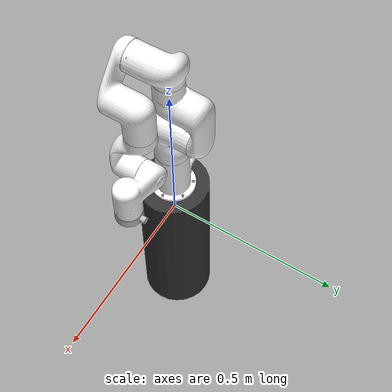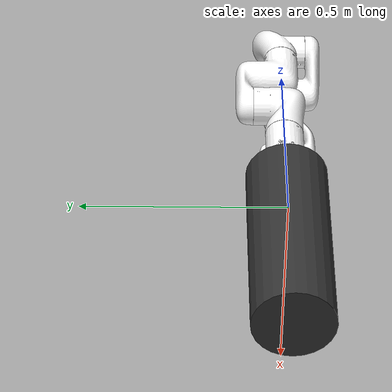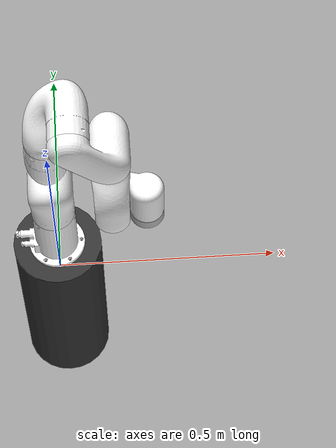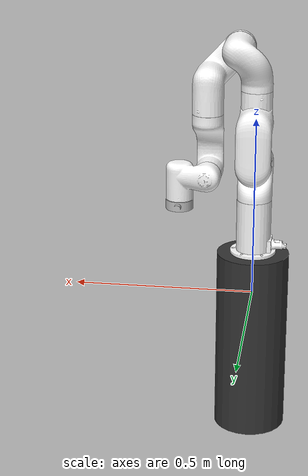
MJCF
<mujoco model="xarm7">
  <compiler angle="radian" autolimits="true" meshdir="assets"/>

  <option integrator="implicitfast"/>

  <asset>
    <material name="white" rgba="1 1 1 1"/>
    <material name="gray" rgba="0.753 0.753 0.753 1"/>
    <material name="black" rgba="0.149 0.149 0.149 1"/>

    <mesh file="link_base.stl"/>
    <mesh file="link1.stl"/>
    <mesh file="link2.stl"/>
    <mesh file="link3.stl"/>
    <mesh file="link4.stl"/>
    <mesh file="link5.stl"/>
    <mesh file="link6.stl"/>
    <mesh file="link7.stl"/>
    <mesh file="end_tool.stl"/>
  </asset>

  <default>
    <default class="arm">
      <geom type="mesh" material="white"/>
      <joint axis="0 0 1" armature="0.1" range="-6.28319 6.28319" frictionloss="1"/>
      <general biastype="affine" ctrlrange="-6.28319 6.28319"/>
      <default class="size1">
        <joint damping="10"/>
        <general gainprm="1500" biasprm="0 -1500 -150" forcerange="-50 50"/>
      </default>
      <default class="size2">
        <joint damping="5"/>
        <general gainprm="1000" biasprm="0 -1000 -100" forcerange="-30 30"/>
      </default>
      <default class="size3">
        <joint damping="2"/>
        <general gainprm="800" biasprm="0 -800 -80" forcerange="-20 20"/>
      </default>
      <default class="spring_link">
        <joint range="0 0.85" stiffness="0.05" springref="2.62" damping="0.00125"/>
      </default>
      <default class="driver">
        <joint range="0 0.85" armature="0.005" damping="0.1" solreflimit="0.005 1"/>
      </default>
      <default class="follower">
        <joint range="0 0.85" solreflimit="0.005 1"/>
      </default>
      <default class="visual">
        <geom type="mesh" contype="0" conaffinity="0" group="2"/>
      </default>
      <default class="collision">
        <geom type="mesh" group="3"/>
      </default>
      <site size="0.001" rgba="1 0 0 1" group="4"/>
    </default>
  </default>

  <worldbody>
    <body name="link_0" pos="0 0 .12" childclass="arm">
      <inertial pos="-0.021131 -0.0016302 0.056488" quat="0.696843 0.20176 0.10388 0.680376" mass="0.88556"
        diaginertia="0.00382023 0.00335282 0.00167725"/>
      <geom name="pedestal" type="cylinder" size="0.1 0.26" pos="0 0 -0.26"
        rgba="0.2 0.2 0.2 1" contype="0" conaffinity="0" group="2" material=""/>
      <geom name="link_0_collision" mesh="link_base"/>
      <camera name="exocentric" pos="0.05 0.57 0.66" fovy="71" resolution="320 240" quat="-0.399 -0.195 0.393 0.805"/>
      <body name="link_1" pos="0 0 0.267" gravcomp="1">
        <inertial pos="-0.0002 0.02905 -0.01233" quat="0.978953 -0.202769 -0.00441617 -0.0227264" mass="2.382"
          diaginertia="0.00569127 0.00533384 0.00293865"/>
        <joint name="joint_1" class="size1"/>
        <geom name="link_1_collision" mesh="link1"/>
        <body name="link_2" quat="1 -1 0 0" gravcomp="1">
          <inertial pos="0.00022 -0.12856 0.01735" quat="0.50198 0.86483 -0.00778841 0.00483285" mass="1.869"
            diaginertia="0.00959898 0.00937717 0.00201315"/>
          <joint name="joint_2" range="-2.059 2.0944" class="size1"/>
          <geom name="link_2_collision" mesh="link2"/>
          <body name="link_3" pos="0 -0.293 0" quat="1 1 0 0" gravcomp="1">
            <inertial pos="0.0466 -0.02463 -0.00768" quat="0.913819 0.289775 0.281481 -0.0416455" mass="1.6383"
              diaginertia="0.00351721 0.00294089 0.00195868"/>
            <joint name="joint_3" class="size2"/>
            <geom name="link_3_collision" mesh="link3"/>
            <body name="link_4" pos="0.0525 0 0" quat="1 1 0 0" gravcomp="1">
              <inertial pos="0.07047 -0.11575 0.012" quat="0.422108 0.852026 -0.126025 0.282832" mass="1.7269"
                diaginertia="0.00657137 0.00647948 0.00186763"/>
              <joint name="joint_4" range="-0.19198 3.927" class="size2"/>
              <geom name="link_4_collision" mesh="link4"/>
              <body name="link_5" pos="0.0775 -0.3425 0" quat="1 1 0 0" gravcomp="1">
                <inertial pos="-0.00032 0.01604 -0.026" quat="0.999311 -0.0304457 0.000577067 0.0212082" mass="1.3203"
                  diaginertia="0.00534729 0.00499076 0.0013489"/>
                <joint name="joint_5" class="size2"/>
                <geom name="link_5_collision" mesh="link5"/>
                <body name="link_6" quat="1 1 0 0" gravcomp="1">
                  <inertial pos="0.06469 0.03278 0.02141" quat="-0.217672 0.772419 0.16258 0.574069" mass="1.325"
                    diaginertia="0.00245421 0.00221646 0.00107273"/>
                  <joint name="joint_6" range="-1.69297 3.14159" class="size3"/>
                  <geom name="link_6_collision" mesh="link6"/>
                  <body name="link_7" pos="0.076 0.097 0" quat="1 -1 0 0" gravcomp="1">
                    <inertial pos="0 -0.00677 -0.01098" quat="0.487612 0.512088 -0.512088 0.487612" mass="0.17"
                      diaginertia="0.000132176 9.3e-05 5.85236e-05"/>
                    <joint name="joint_7" class="size3"/>
                    <geom name="link_7_collision" material="gray" mesh="end_tool"/>
                  </body>
                </body>
              </body>
            </body>
          </body>
        </body>
      </body>
    </body>
  </worldbody>

  <actuator>
    <general name="joint_1" joint="joint_1" class="size1"/>
    <general name="joint_2" joint="joint_2" class="size1" ctrlrange="-2.059 2.0944"/>
    <general name="joint_3" joint="joint_3" class="size2"/>
    <general name="joint_4" joint="joint_4" class="size2" ctrlrange="-0.19198 3.927"/>
    <general name="joint_5" joint="joint_5" class="size2"/>
    <general name="joint_6" joint="joint_6" class="size3" ctrlrange="-1.69297 3.14159"/>
    <general name="joint_7" joint="joint_7" class="size3"/>
  </actuator>

  <keyframe>
    <key name="home" qpos="-0.19548 -0.17104 -0.21991 1.16588 0.42237 1.65806 -0.45204" ctrl="-0.19548 -0.17104 -0.21991 1.16588 0.42237 1.65806 -0.45204"/>
  </keyframe>
</mujoco>
